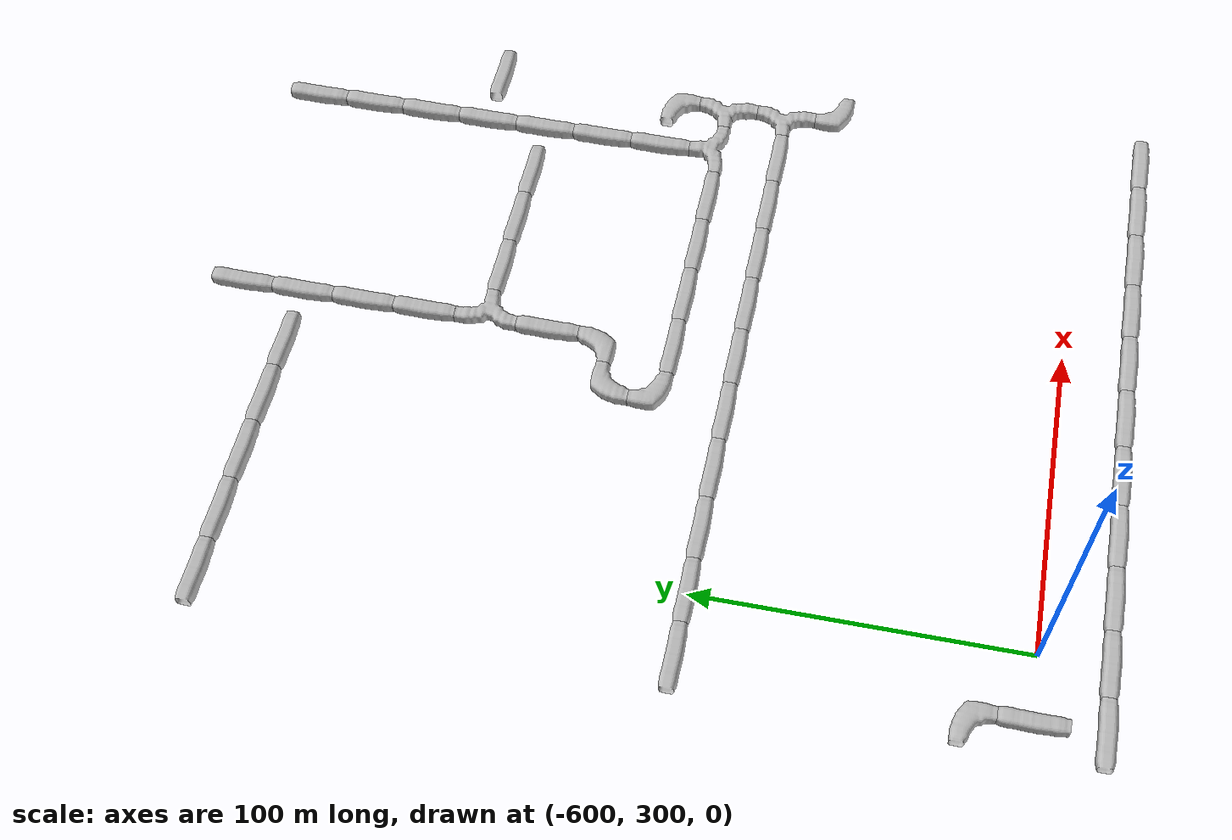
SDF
<sdf version="1.6">
 <world name="cave_32000_8">
  <include>
   <static>true</static>
   <name>cave_-21_19</name>
   <pose>-420 380 0 0 0 0.0</pose>
   <uri>model://cave_L_20m</uri>
  </include>
  <include>
   <static>true</static>
   <name>cave_-21_20</name>
   <pose>-420 400 0 0 0 1.5707963267948966</pose>
   <uri>model://cave_3way_20m</uri>
  </include>
  <include>
   <static>true</static>
   <name>cave_-22_20</name>
   <pose>-440 400 0 0 0 1.5707963267948966</pose>
   <uri>model://cave_straight_20m</uri>
  </include>
  <include>
   <static>true</static>
   <name>cave_-23_20</name>
   <pose>-460 400 0 0 0 1.5707963267948966</pose>
   <uri>model://cave_straight_20m</uri>
  </include>
  <include>
   <static>true</static>
   <name>cave_-24_20</name>
   <pose>-480 400 0 0 0 1.5707963267948966</pose>
   <uri>model://cave_straight_20m</uri>
  </include>
  <include>
   <static>true</static>
   <name>cave_-25_20</name>
   <pose>-500 400 0 0 0 1.5707963267948966</pose>
   <uri>model://cave_straight_20m</uri>
  </include>
  <include>
   <static>true</static>
   <name>cave_-26_20</name>
   <pose>-520 400 0 0 0 1.5707963267948966</pose>
   <uri>model://cave_straight_20m</uri>
  </include>
  <include>
   <static>true</static>
   <name>cave_-27_20</name>
   <pose>-540 400 0 0 0 1.5707963267948966</pose>
   <uri>model://cave_straight_20m</uri>
  </include>
  <include>
   <static>true</static>
   <name>cave_-28_20</name>
   <pose>-560 400 0 0 0 1.5707963267948966</pose>
   <uri>model://cave_straight_20m</uri>
  </include>
  <include>
   <static>true</static>
   <name>cave_-29_20</name>
   <pose>-580 400 0 0 0 1.5707963267948966</pose>
   <uri>model://cave_straight_20m</uri>
  </include>
  <include>
   <static>true</static>
   <name>cave_-30_20</name>
   <pose>-600 400 0 0 0 1.5707963267948966</pose>
   <uri>model://cave_straight_20m</uri>
  </include>
  <include>
   <static>true</static>
   <name>cave_-31_20</name>
   <pose>-620 400 0 0 0 1.5707963267948966</pose>
   <uri>model://cave_straight_20m</uri>
  </include>
  <include>
   <static>true</static>
   <name>cave_-31_16</name>
   <pose>-620 320 0 0 0 3.141592653589793</pose>
   <uri>model://cave_L_20m</uri>
  </include>
  <include>
   <static>true</static>
   <name>cave_-31_15</name>
   <pose>-620 300 0 0 0 0.0</pose>
   <uri>model://cave_straight_20m</uri>
  </include>
  <include>
   <static>true</static>
   <name>cave_-21_21</name>
   <pose>-420 420 0 0 0 1.5707963267948966</pose>
   <uri>model://cave_3way_20m</uri>
  </include>
  <include>
   <static>true</static>
   <name>cave_-22_21</name>
   <pose>-440 420 0 0 0 0.0</pose>
   <uri>model://cave_3way_20m</uri>
  </include>
  <include>
   <static>true</static>
   <name>cave_-23_21</name>
   <pose>-460 420 0 0 0 1.5707963267948966</pose>
   <uri>model://cave_straight_20m</uri>
  </include>
  <include>
   <static>true</static>
   <name>cave_-24_21</name>
   <pose>-480 420 0 0 0 1.5707963267948966</pose>
   <uri>model://cave_straight_20m</uri>
  </include>
  <include>
   <static>true</static>
   <name>cave_-25_21</name>
   <pose>-500 420 0 0 0 1.5707963267948966</pose>
   <uri>model://cave_straight_20m</uri>
  </include>
  <include>
   <static>true</static>
   <name>cave_-26_21</name>
   <pose>-520 420 0 0 0 1.5707963267948966</pose>
   <uri>model://cave_straight_20m</uri>
  </include>
  <include>
   <static>true</static>
   <name>cave_-27_21</name>
   <pose>-540 420 0 0 0 0.0</pose>
   <uri>model://cave_L_20m</uri>
  </include>
  <include>
   <static>true</static>
   <name>cave_-27_22</name>
   <pose>-540 440 0 0 0 -1.5707963267948966</pose>
   <uri>model://cave_L_20m</uri>
  </include>
  <include>
   <static>true</static>
   <name>cave_-26_22</name>
   <pose>-520 440 0 0 0 1.5707963267948966</pose>
   <uri>model://cave_L_20m</uri>
  </include>
  <include>
   <static>true</static>
   <name>cave_-26_23</name>
   <pose>-520 460 0 0 0 0.0</pose>
   <uri>model://cave_straight_20m</uri>
  </include>
  <include>
   <static>true</static>
   <name>cave_-26_24</name>
   <pose>-520 480 0 0 0 -1.5707963267948966</pose>
   <uri>model://cave_3way_20m</uri>
  </include>
  <include>
   <static>true</static>
   <name>cave_-25_24</name>
   <pose>-500 480 0 0 0 1.5707963267948966</pose>
   <uri>model://cave_straight_20m</uri>
  </include>
  <include>
   <static>true</static>
   <name>cave_-24_24</name>
   <pose>-480 480 0 0 0 1.5707963267948966</pose>
   <uri>model://cave_straight_20m</uri>
  </include>
  <include>
   <static>true</static>
   <name>cave_-23_24</name>
   <pose>-460 480 0 0 0 1.5707963267948966</pose>
   <uri>model://cave_straight_20m</uri>
  </include>
  <include>
   <static>true</static>
   <name>cave_-26_25</name>
   <pose>-520 500 0 0 0 0.0</pose>
   <uri>model://cave_straight_20m</uri>
  </include>
  <include>
   <static>true</static>
   <name>cave_-26_26</name>
   <pose>-520 520 0 0 0 0.0</pose>
   <uri>model://cave_straight_20m</uri>
  </include>
  <include>
   <static>true</static>
   <name>cave_-26_27</name>
   <pose>-520 540 0 0 0 0.0</pose>
   <uri>model://cave_straight_20m</uri>
  </include>
  <include>
   <static>true</static>
   <name>cave_-26_28</name>
   <pose>-520 560 0 0 0 0.0</pose>
   <uri>model://cave_straight_20m</uri>
  </include>
  <include>
   <static>true</static>
   <name>cave_-31_27</name>
   <pose>-620 540 0 0 0 1.5707963267948966</pose>
   <uri>model://cave_straight_20m</uri>
  </include>
  <include>
   <static>true</static>
   <name>cave_-30_27</name>
   <pose>-600 540 0 0 0 1.5707963267948966</pose>
   <uri>model://cave_straight_20m</uri>
  </include>
  <include>
   <static>true</static>
   <name>cave_-29_27</name>
   <pose>-580 540 0 0 0 1.5707963267948966</pose>
   <uri>model://cave_straight_20m</uri>
  </include>
  <include>
   <static>true</static>
   <name>cave_-28_27</name>
   <pose>-560 540 0 0 0 1.5707963267948966</pose>
   <uri>model://cave_straight_20m</uri>
  </include>
  <include>
   <static>true</static>
   <name>cave_-27_27</name>
   <pose>-540 540 0 0 0 1.5707963267948966</pose>
   <uri>model://cave_straight_20m</uri>
  </include>
  <include>
   <static>true</static>
   <name>cave_-22_22</name>
   <pose>-440 440 0 0 0 0.0</pose>
   <uri>model://cave_straight_20m</uri>
  </include>
  <include>
   <static>true</static>
   <name>cave_-22_23</name>
   <pose>-440 460 0 0 0 0.0</pose>
   <uri>model://cave_straight_20m</uri>
  </include>
  <include>
   <static>true</static>
   <name>cave_-22_24</name>
   <pose>-440 480 0 0 0 0.0</pose>
   <uri>model://cave_straight_20m</uri>
  </include>
  <include>
   <static>true</static>
   <name>cave_-22_25</name>
   <pose>-440 500 0 0 0 0.0</pose>
   <uri>model://cave_straight_20m</uri>
  </include>
  <include>
   <static>true</static>
   <name>cave_-22_26</name>
   <pose>-440 520 0 0 0 0.0</pose>
   <uri>model://cave_straight_20m</uri>
  </include>
  <include>
   <static>true</static>
   <name>cave_-22_27</name>
   <pose>-440 540 0 0 0 0.0</pose>
   <uri>model://cave_straight_20m</uri>
  </include>
  <include>
   <static>true</static>
   <name>cave_-22_28</name>
   <pose>-440 560 0 0 0 0.0</pose>
   <uri>model://cave_straight_20m</uri>
  </include>
  <include>
   <static>true</static>
   <name>cave_-21_25</name>
   <pose>-420 500 0 0 0 1.5707963267948966</pose>
   <uri>model://cave_straight_20m</uri>
  </include>
  <include>
   <static>true</static>
   <name>cave_-21_22</name>
   <pose>-420 440 0 0 0 3.141592653589793</pose>
   <uri>model://cave_L_20m</uri>
  </include>
  <include>
   <static>true</static>
   <name>cave_-21_14</name>
   <pose>-420 280 0 0 0 1.5707963267948966</pose>
   <uri>model://cave_straight_20m</uri>
  </include>
  <include>
   <static>true</static>
   <name>cave_-22_14</name>
   <pose>-440 280 0 0 0 1.5707963267948966</pose>
   <uri>model://cave_straight_20m</uri>
  </include>
  <include>
   <static>true</static>
   <name>cave_-23_14</name>
   <pose>-460 280 0 0 0 1.5707963267948966</pose>
   <uri>model://cave_straight_20m</uri>
  </include>
  <include>
   <static>true</static>
   <name>cave_-24_14</name>
   <pose>-480 280 0 0 0 1.5707963267948966</pose>
   <uri>model://cave_straight_20m</uri>
  </include>
  <include>
   <static>true</static>
   <name>cave_-25_14</name>
   <pose>-500 280 0 0 0 1.5707963267948966</pose>
   <uri>model://cave_straight_20m</uri>
  </include>
  <include>
   <static>true</static>
   <name>cave_-26_14</name>
   <pose>-520 280 0 0 0 1.5707963267948966</pose>
   <uri>model://cave_straight_20m</uri>
  </include>
  <include>
   <static>true</static>
   <name>cave_-27_14</name>
   <pose>-540 280 0 0 0 1.5707963267948966</pose>
   <uri>model://cave_straight_20m</uri>
  </include>
  <include>
   <static>true</static>
   <name>cave_-28_14</name>
   <pose>-560 280 0 0 0 1.5707963267948966</pose>
   <uri>model://cave_straight_20m</uri>
  </include>
  <include>
   <static>true</static>
   <name>cave_-29_14</name>
   <pose>-580 280 0 0 0 1.5707963267948966</pose>
   <uri>model://cave_straight_20m</uri>
  </include>
  <include>
   <static>true</static>
   <name>cave_-30_14</name>
   <pose>-600 280 0 0 0 1.5707963267948966</pose>
   <uri>model://cave_straight_20m</uri>
  </include>
  <include>
   <static>true</static>
   <name>cave_-31_14</name>
   <pose>-620 280 0 0 0 1.5707963267948966</pose>
   <uri>model://cave_straight_20m</uri>
  </include>
 </world>
</sdf>
